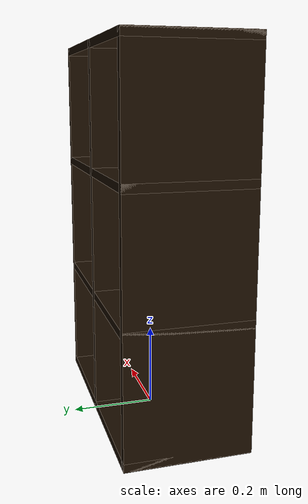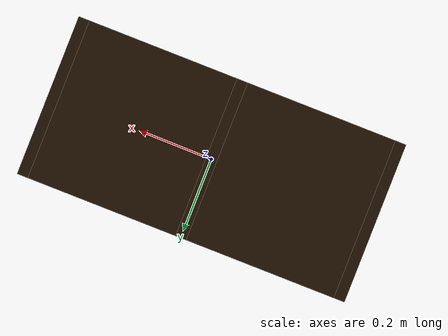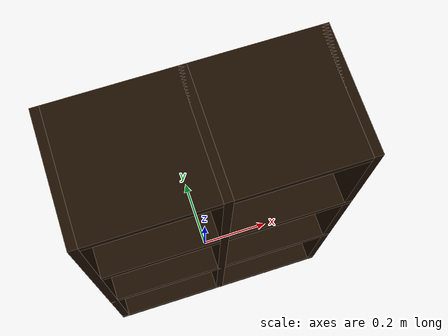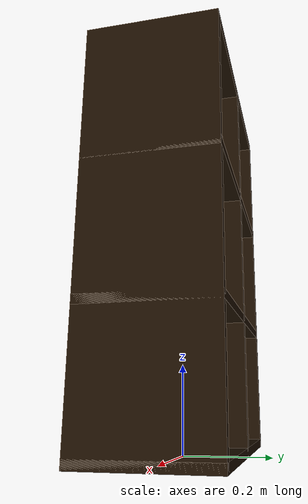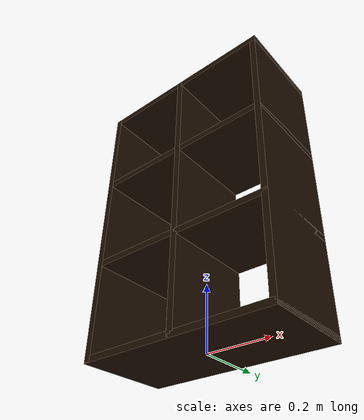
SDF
<?xml version='1.0'?>
<sdf version='1.6'>
  <model name='6_Cube_StorageE'>

    <link name='Wall_0'>
    <pose frame=''>0 0 0.01 0 -0 0</pose>
	<inertial>
	  <mass>1.6201</mass>
	   <inertia>
	     <ixx>0.0119</ixx>
	     <iyy>0.0631</iyy>
	     <izz>0.0513</izz>
    	     <ixy>0</ixy>
	     <ixz>0</ixz>
	     <iyz>0</iyz>
	   </inertia>
	</inertial>
      <collision name='Wall_0_Collision'>
        <geometry>
          <box>
            <size>0.616 0.296 0.02</size>
          </box>
        </geometry>
      </collision>
      <visual name='Wall_0_Visual'>
        <geometry>
          <box>
            <size>0.616 0.296 0.02</size>
          </box>
        </geometry>
        <material>
          <script>
            <uri>file://media/materials/scripts/gazebo.material</uri>
            <name>Gazebo/Grey</name>
          </script>
          <ambient>0.105882 0.0509804 0 1</ambient>
        </material>
      </visual>
   </link>

     <joint type="fixed" name="0_2">
      <pose frame=''>-0.308 0 0 0 0 0</pose>
         <parent>Wall_2</parent>
  	 <child>Wall_0</child>
	 <axis>
	   <xyz>1 0 0</xyz>
	 </axis>
       </joint>

  <joint type="fixed" name="0_12">
      <pose frame=''>0 0 0 0 0 0</pose>
         <parent>Wall_12</parent>
  	 <child>Wall_0</child>
	 <axis>
	   <xyz>0 0 1</xyz>
	 </axis>
       </joint>

  <joint type="fixed" name="0_4">
      <pose frame=''>0.308 0 0 0 0 0</pose>
         <parent>Wall_4</parent>
  	 <child>Wall_0</child>
	 <axis>
	   <xyz>1 0 0</xyz>
	 </axis>
       </joint>

    <link name='Wall_10'>
      <pose frame=''>0 0 0.610 0 0 0</pose>
	<inertial>
	  <mass>1.6201</mass>
	   <inertia>
	     <ixx>0.0119</ixx>
	     <iyy>0.0631</iyy>
	     <izz>0.0513</izz>
    	     <ixy>0</ixy>
	     <ixz>0</ixz>
	     <iyz>0</iyz>
	   </inertia>
	</inertial>
      <collision name='Wall_10_Collision'>
        <geometry>
          <box>
            <size>0.616 0.296 0.02 </size>
          </box>
        </geometry>
      </collision>
      <visual name='Wall_10_Visual'>
          <geometry>
          <box>
            <size>0.616 0.296 0.02</size>
          </box>
        </geometry>
        <material>
          <script>
            <uri>file://media/materials/scripts/gazebo.material</uri>
            <name>Gazebo/Grey</name>
          </script>
          <ambient>0.105882 0.0509804 0 1</ambient>
        </material>
      </visual>
    </link>

     <joint type="fixed" name="10_2">
      <pose frame=''>-0.308 0 0 0 0 0</pose>
         <parent>Wall_2</parent>
  	 <child>Wall_10</child>
	 <axis>
	   <xyz>1 0 0</xyz>
	 </axis>
       </joint>

  <joint type="fixed" name="10_12">
      <pose frame=''>0 0 0 0 0 0</pose>
         <parent>Wall_12</parent>
  	 <child>Wall_10</child>
	 <axis>
	   <xyz>0 0 1</xyz>
	 </axis>
       </joint>

  <joint type="fixed" name="10_4">
      <pose frame=''>0.308 0 0 0 0 0</pose>
         <parent>Wall_4</parent>
  	 <child>Wall_10</child>
	 <axis>
	   <xyz>1 0 0</xyz>
	 </axis>
       </joint>

    <link name='Wall_12'>
  <pose frame=''>0 0 0.4575 0 0 0</pose>
	<inertial>
	  <mass>2.4065</mass>
	   <inertia>
	     <ixx>0.0177</ixx>
	     <iyy>0.1855</iyy>
	     <izz>0.1680</izz>
    	     <ixy>0</ixy>
	     <ixz>0</ixz>
	     <iyz>0</iyz>
	   </inertia>
	</inertial>
      <collision name='Wall_12_Collision'>
        <geometry>
          <box>
            <size>0.02 0.296 0.915</size>
          </box>
        </geometry>
      </collision>
      <visual name='Wall_12_Visual'>
         <geometry>
          <box>
            <size>0.02 0.296 0.915</size>
          </box>
        </geometry>
        <material>
          <script>
            <uri>file://media/materials/scripts/gazebo.material</uri>
            <name>Gazebo/Grey</name>
          </script>
          <ambient>0.105882 0.0509804 0 1</ambient>
        </material>
      </visual>
    </link>

    <link name='Wall_2'>
      <pose frame=''>-0.298 0 0.4575 0 0 0</pose>
	<inertial>
	  <mass>2.4065</mass>
	   <inertia>
	     <ixx>0.0177</ixx>
	     <iyy>0.1855</iyy>
	     <izz>0.1680</izz>
    	     <ixy>0</ixy>
	     <ixz>0</ixz>
	     <iyz>0</iyz>
	   </inertia>
	</inertial>
      <collision name='Wall_2_Collision'>
        <geometry>
          <box>
            <size>0.02 0.296 0.915</size>
          </box>
        </geometry>
      </collision>
      <visual name='Wall_2_Visual'>
        <geometry>
          <box>
            <size>0.02 0.296 0.915</size>
          </box>
        </geometry>
        <material>
          <script>
            <uri>file://media/materials/scripts/gazebo.material</uri>
            <name>Gazebo/Grey</name>
          </script>
          <ambient>0.105882 0.0509804 0 1</ambient>
        </material>
      </visual>
    </link>

    <link name='Wall_4'>
      <pose frame=''>0.298 0 0.4575 0 0 0</pose>
	<inertial>
	  <mass>2.4065</mass>
	   <inertia>
	     <ixx>0.0177</ixx>
	     <iyy>0.1855</iyy>
	     <izz>0.1680</izz>
    	     <ixy>0</ixy>
	     <ixz>0</ixz>
	     <iyz>0</iyz>
	   </inertia>
	</inertial>
      <collision name='Wall_4_Collision'>
        <geometry>
          <box>
            <size>0.02 0.296 0.915</size>
          </box>
        </geometry>
      </collision>
      <visual name='Wall_4_Visual'>
        <geometry>
          <box>
            <size>0.02 0.296 0.915</size>
          </box>
        </geometry>
        <material>
          <script>
            <uri>file://media/materials/scripts/gazebo.material</uri>
            <name>Gazebo/Grey</name>
          </script>
          <ambient>0.105882 0.0509804 0 1</ambient>
        </material>
      </visual>
    </link>

    <link name='Wall_6'>
     <pose frame=''>0 0 0.905 0 0 0</pose>
	<inertial>
	  <mass>1.6201</mass>
	   <inertia>
	     <ixx>0.0119</ixx>
	     <iyy>0.0631</iyy>
	     <izz>0.0513</izz>
    	     <ixy>0</ixy>
	     <ixz>0</ixz>
	     <iyz>0</iyz>
	   </inertia>
	</inertial>
      <collision name='Wall_6_Collision'>
        <geometry>
          <box>
            <size>0.616 0.296 0.02</size>
          </box>
        </geometry>
       </collision>
      <visual name='Wall_6_Visual'>
        <geometry>
          <box>
            <size>0.616 0.296 0.02</size>
          </box>
        </geometry>
        <material>
          <script>
            <uri>file://media/materials/scripts/gazebo.material</uri>
            <name>Gazebo/Grey</name>
          </script>
          <ambient>0.105882 0.0509804 0 1</ambient>
        </material>
      </visual>
     </link>

     <joint type="fixed" name="6_2">
      <pose frame=''>-0.308 0 0 0 0 0</pose>
         <parent>Wall_2</parent>
  	 <child>Wall_6</child>
	 <axis>
	   <xyz>2 0 0</xyz>
	 </axis>
       </joint>

  <joint type="fixed" name="6_12">
      <pose frame=''>0 0 0 0 0 0</pose>
         <parent>Wall_12</parent>
  	 <child>Wall_6</child>
	 <axis>
	   <xyz>0 0 1</xyz>
	 </axis>
       </joint>

  <joint type="fixed" name="6_4">
      <pose frame=''>0.308 0 0 0 0 0</pose>
         <parent>Wall_4</parent>
  	 <child>Wall_6</child>
	 <axis>
	   <xyz>1 0 0</xyz>
	 </axis>
       </joint>

    <link name='Wall_8'>
    <pose frame=''>0 0 0.305 0 0 0</pose>
	<inertial>
	  <mass>1.6201</mass>
	   <inertia>
	     <ixx>0.0119</ixx>
	     <iyy>0.0631</iyy>
	     <izz>0.0513</izz>
    	     <ixy>0</ixy>
	     <ixz>0</ixz>
	     <iyz>0</iyz>
	   </inertia>
	</inertial>
      <collision name='Wall_8_Collision'>
        <geometry>
          <box>
            <size>0.616 0.296 0.02</size>
          </box>
        </geometry>
       </collision>
      <visual name='Wall_8_Visual'>
        <geometry>
          <box>
            <size>0.616 0.296 0.02</size>
          </box>
        </geometry>
        <material>
          <script>
            <uri>file://media/materials/scripts/gazebo.material</uri>
            <name>Gazebo/Grey</name>
          </script>
          <ambient>0.105882 0.0509804 0 1</ambient>
        </material>
      </visual>
      </link>

     <joint type="fixed" name="8_2">
      <pose frame=''>-0.308 0 0 0 0 0</pose>
         <parent>Wall_2</parent>
  	 <child>Wall_8</child>
	 <axis>
	   <xyz>1 0 0</xyz>
	 </axis>
       </joint>

  <joint type="fixed" name="8_12">
      <pose frame=''>0 0 0 0 0 0</pose>
         <parent>Wall_12</parent>
  	 <child>Wall_8</child>
	 <axis>
	   <xyz>0 0 1</xyz>
	 </axis>
       </joint>

  <joint type="fixed" name="8_4">
      <pose frame=''>0.308 0 0 0 0 0</pose>
         <parent>Wall_4</parent>
  	 <child>Wall_8</child>
	 <axis>
	   <xyz>1 0 0</xyz>
	 </axis>
       </joint>

    <static>1</static>
  </model>
</sdf>
